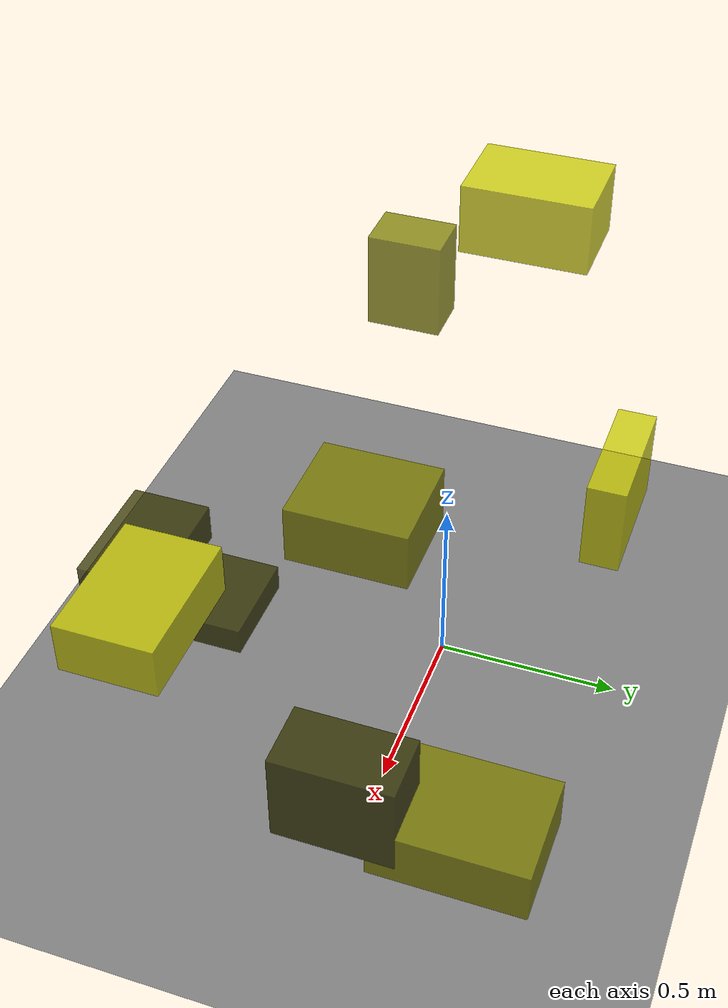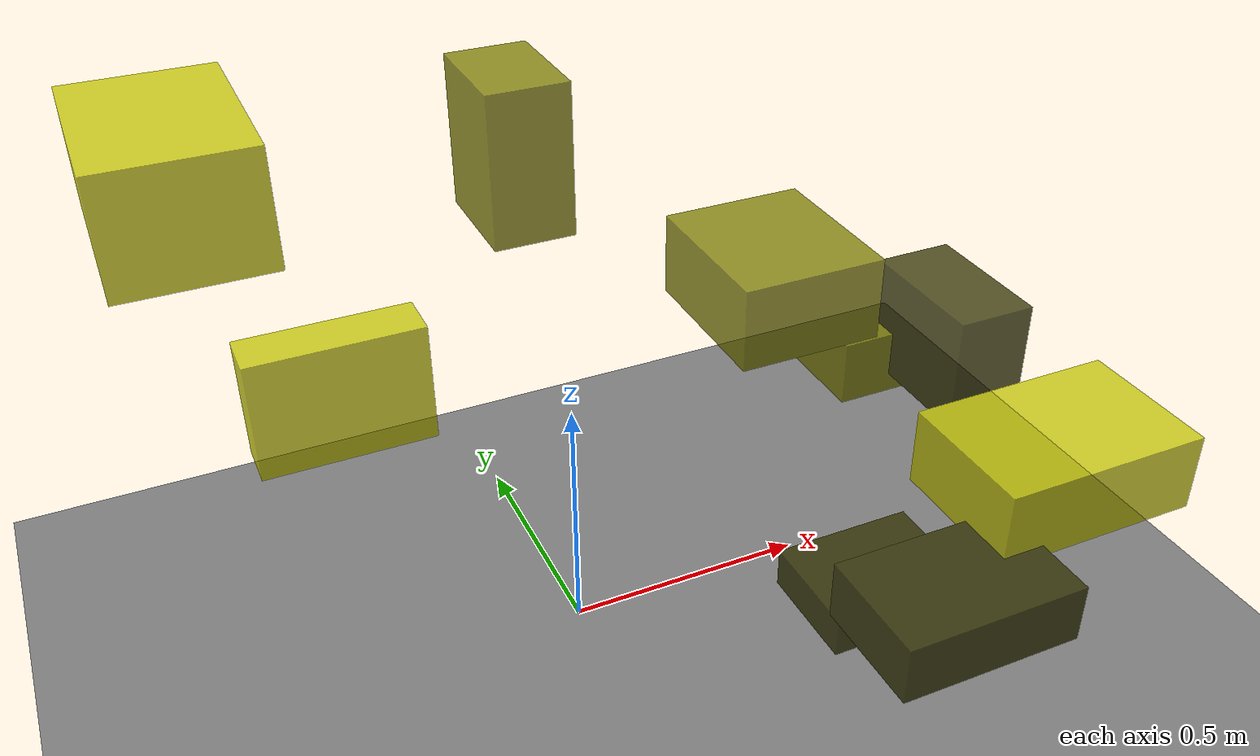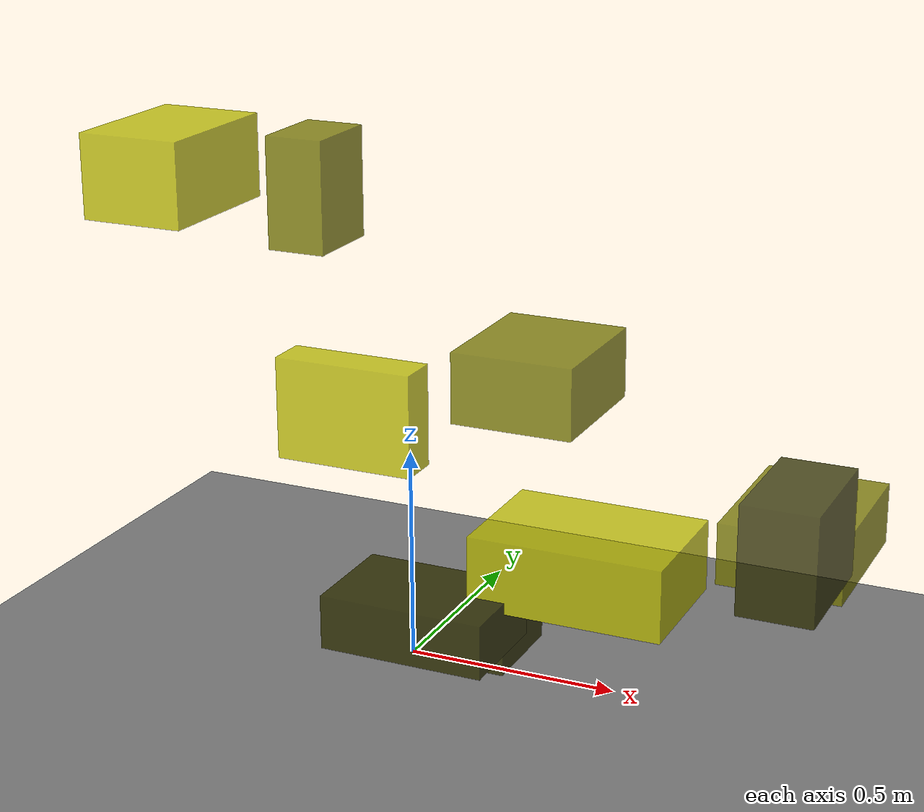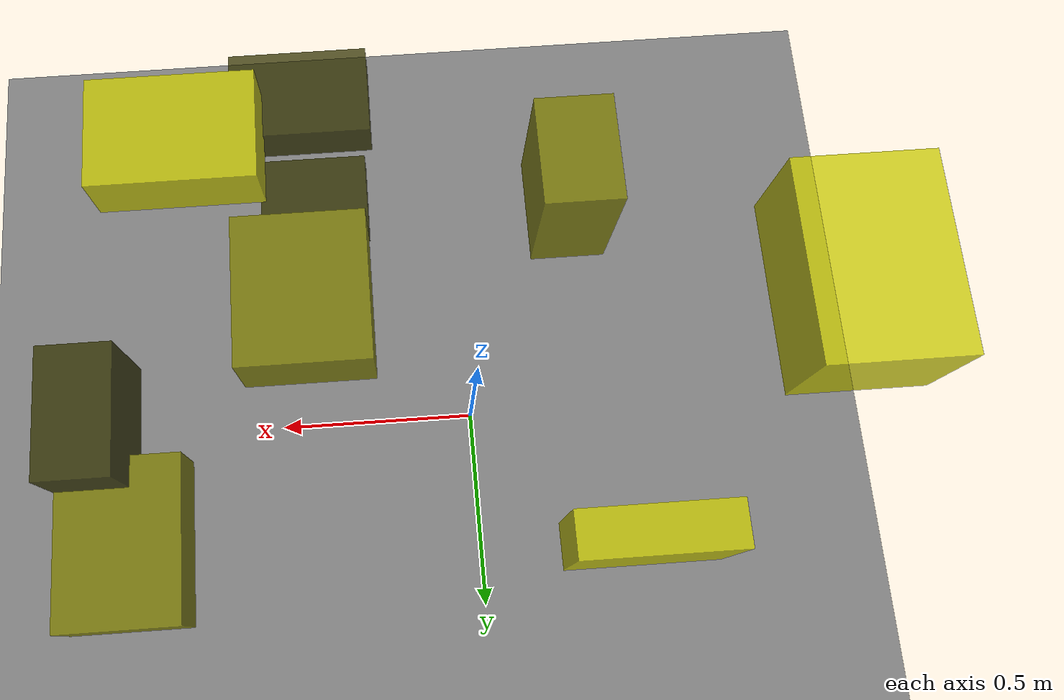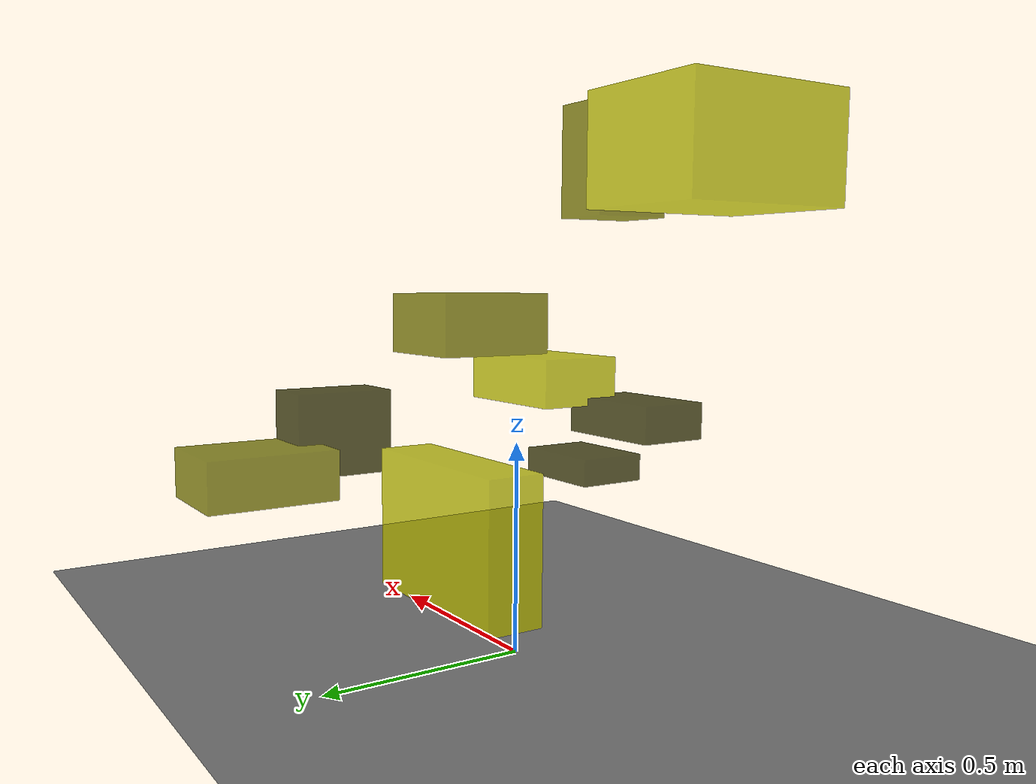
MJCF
<?xml version="1.0"?>
<mujoco model="obstacle_scene">
  <compiler angle="radian" coordinate="local"/>
  <option timestep="0.001" gravity="0 0 -9.81"/>

  <asset>
    <material name="obstacle_mat" rgba="0.8 0.8 0.0 0.8"/>
    <material name="ground_mat" rgba="0.5 0.5 0.5 1"/>
  </asset>

  <worldbody>
    <!-- Ground plane -->
    <geom name="ground" type="plane" size="3 3 0.1" material="ground_mat"/>

    <!-- Obstacles -->
    <body name="obstacle_0" pos="0.361019 -0.495033 0.350351">
      <geom name="obs_0" type="box" size="0.130068 0.099767 0.037298" rgba="0.2 0.2 0.0 0.8"/>
    </body>
    <body name="obstacle_1" pos="0.357535 -0.099558 0.763619">
      <geom name="obs_1" type="box" size="0.135484 0.155822 0.078353" rgba="0.5 0.5 0.0 0.8"/>
    </body>
    <body name="obstacle_2" pos="-0.356975 0.389909 0.417710">
      <geom name="obs_2" type="box" size="0.185105 0.054888 0.133827" rgba="0.8 0.8 0.0 0.8"/>
    </body>
    <body name="obstacle_3" pos="0.895586 0.044905 0.419608">
      <geom name="obs_3" type="box" size="0.086418 0.152224 0.125828" rgba="0.2 0.2 0.0 0.8"/>
    </body>
    <body name="obstacle_4" pos="-0.141145 -0.154135 1.134265">
      <geom name="obs_4" type="box" size="0.065141 0.092705 0.122561" rgba="0.5 0.5 0.0 0.8"/>
    </body>
    <body name="obstacle_5" pos="-0.623020 0.037241 1.095793">
      <geom name="obs_5" type="box" size="0.125013 0.178863 0.099994" rgba="0.8 0.8 0.0 0.8"/>
    </body>
    <body name="obstacle_6" pos="0.375802 -0.703801 0.468927">
      <geom name="obs_6" type="box" size="0.165617 0.108335 0.054026" rgba="0.2 0.2 0.0 0.8"/>
    </body>
    <body name="obstacle_7" pos="0.836720 0.317694 0.322675">
      <geom name="obs_7" type="box" size="0.144549 0.194681 0.073170" rgba="0.5 0.5 0.0 0.8"/>
    </body>
    <body name="obstacle_8" pos="0.657092 -0.568714 0.572114">
      <geom name="obs_8" type="box" size="0.193321 0.131911 0.072042" rgba="0.8 0.8 0.0 0.8"/>
    </body>
  </worldbody>
</mujoco>
